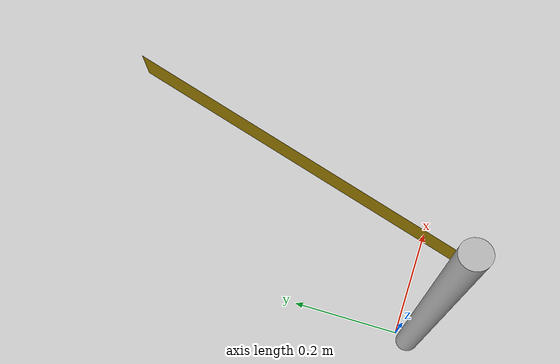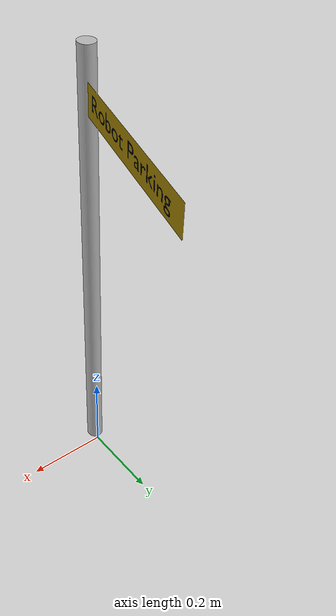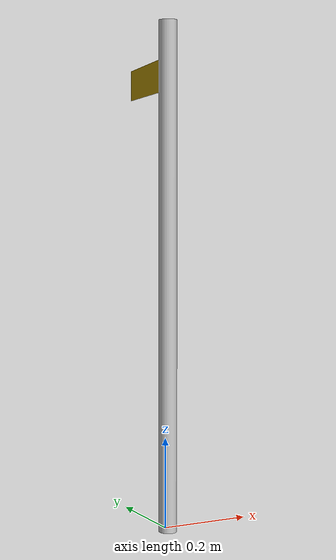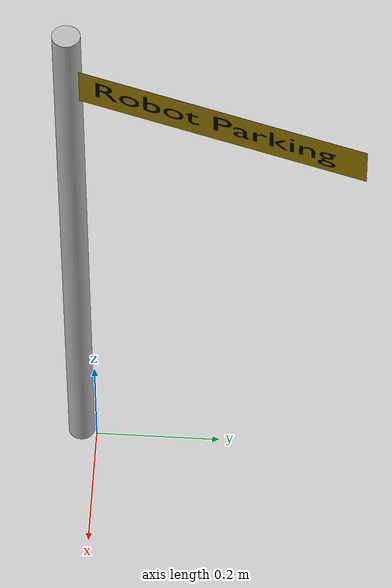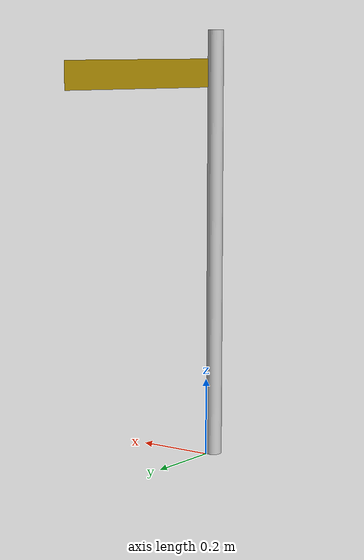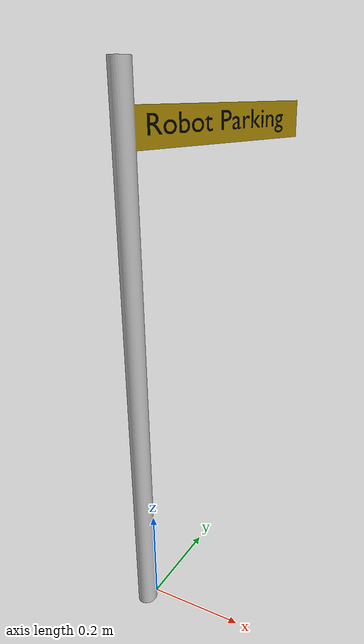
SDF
<?xml version="1.0"?>
<sdf version="1.8">
  <model name="parking_zone_decal">
    <static>true</static>
    <link name="link">
      <visual name="visual">
        <geometry>
          <mesh>
            <uri>model://parking_zone_decal/meshes/parking_sign.dae</uri>
            <scale>1.3 1.3 1.3</scale>
          </mesh>
        </geometry>
      </visual>
      <collision name="collision">
        <geometry>
          <mesh>
            <uri>model://parking_zone_decal/meshes/parking_sign.dae</uri>
          </mesh>
        </geometry>
      </collision>
    </link>
  </model>
</sdf>
